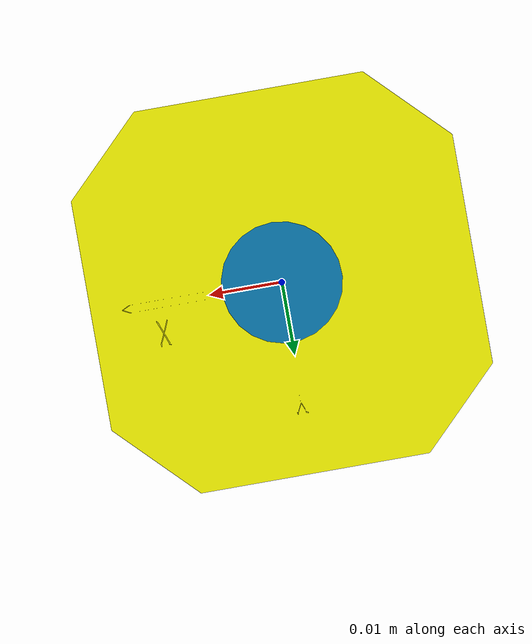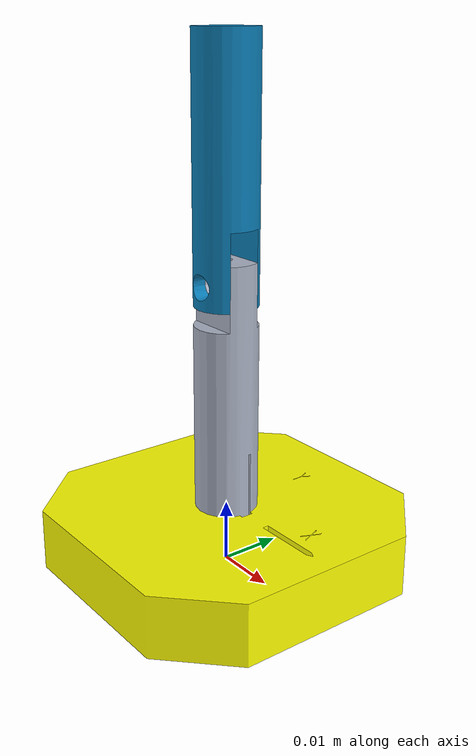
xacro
<?xml version="1.0"?>
<!-- Revolute-Revolute Manipulator -->
<robot name="rrbot" xmlns:xacro="http://www.ros.org/wiki/xacro">

      <link name="world"/>
      <joint name="fixed" type="fixed">
        <parent link="world"/>
        <child link="base_link"/>
      </joint>

      <link
        name="base_link">
        <inertial>
          <origin
            xyz="-1.8503E-05 -3.9839E-06 0.0049956"
            rpy="0 0 0" />
          <mass
            value="0.022169" />
          <inertia
            ixx="4.4372E-06"
            ixy="1.3719E-10"
            ixz="1.4194E-09"
            iyy="4.432E-06"
            iyz="1.3021E-10"
            izz="8.5002E-06" />
        </inertial>
        <visual>
          <origin
            xyz="0 0 0"
            rpy="0 0 0" />
          <geometry>
            <mesh
              filename="package://mylink_urdf/meshes/base_link.STL" />
          </geometry>
          <material
            name="">
            <color
              rgba="1 1 0 1" />
          </material>
        </visual>
        <collision>
          <origin
            xyz="0 0 0"
            rpy="0 0 0" />
          <geometry>
            <mesh
              filename="package://mylink_urdf/meshes/base_link.STL" />
          </geometry>
        </collision>
      </link>
      <link
        name="link_1">
        <inertial>
          <origin
            xyz="-2.4999E-05 5.1564E-10 -0.023575"
            rpy="0 0 0" />
          <mass
            value="1" />
          <inertia
            ixx="1.7851E-01"
            ixy="0"
            ixz="0"
            iyy="1.7915E-01"
            iyz="0"
            izz="1.1684E-01" />
        </inertial>
        <visual>
          <origin
            xyz="0 0 0"
            rpy="0 0 0" />
          <geometry>
            <mesh
              filename="package://mylink_urdf/meshes/link_1.STL" />
          </geometry>
          <material
            name="">
            <color
              rgba="0.66667 0.69804 0.76863 1" />
          </material>
        </visual>
        <collision>
          <origin
            xyz="0 0 0"
            rpy="0 0 0" />
          <geometry>
            <mesh
              filename="package://mylink_urdf/meshes/link_1.STL" />
          </geometry>
        </collision>
      </link>
      <joint
        name="joint_1"
        type="revolute">
        <origin
          xyz="0 0 0.0465"
          rpy="0 0 0" />
        <parent
          link="base_link" />
        <child
          link="link_1" />
        <axis
          xyz="0 0 1" />
        <limit
          lower="-3.14"
          upper="3.14"
          effort="2.5"
          velocity="2" />
      </joint>
      <link
        name="link_2">
        <inertial>
          <origin
            xyz="0.020159 -1.0519E-09 3.8421E-09"
            rpy="0 0 0" />
          <mass
            value="1" />
          <inertia
            ixx="8.856E-01"
            ixy="0"
            ixz="0"
            iyy="7.2036E-01"
            iyz="0"
            izz="7.1373E-01" />
        </inertial>
        <visual>
          <origin
            xyz="0 0 0"
            rpy="0 0 0" />
          <geometry>
            <mesh
              filename="package://mylink_urdf/meshes/link_2.STL" />
          </geometry>
          <material
            name="">
            <color
              rgba="0.039216 0.4902 0.7098 1" />
          </material>
        </visual>
        <collision>
          <origin
            xyz="0 0 0"
            rpy="0 0 0" />
          <geometry>
            <mesh
              filename="package://mylink_urdf/meshes/link_2.STL" />
          </geometry>
        </collision>
      </link>
      <joint
        name="joint_2"
        type="revolute">
        <origin
          xyz="0 0 0"
          rpy="1.5708 -1.5708 0" />
        <parent
          link="link_1" />
        <child
          link="link_2" />
        <axis
          xyz="0 0 -1" />
        <limit
          lower="-2.7"
          upper="2.7"
          effort="2.5"
          velocity="2" />
      </joint>

      <transmission name="tran1">
        <type>transmission_interface/SimpleTransmission</type>
        <joint name="joint_1">
          <hardwareInterface>hardware_interface/EffortJointInterface</hardwareInterface>
        </joint>
        <actuator name="motor1">
          <hardwareInterface>hardware_interface/EffortJointInterface</hardwareInterface>
          <mechanicalReduction>1</mechanicalReduction>
        </actuator>
      </transmission>

      <transmission name="tran2">
        <type>transmission_interface/SimpleTransmission</type>
        <joint name="joint_2">
          <hardwareInterface>hardware_interface/EffortJointInterface</hardwareInterface>
        </joint>
        <actuator name="motor2">
          <hardwareInterface>hardware_interface/EffortJointInterface</hardwareInterface>
          <mechanicalReduction>1</mechanicalReduction>
        </actuator>
      </transmission>

      <gazebo reference="link_2">
        <mu1>0.2</mu1>
        <mu2>0.2</mu2>
        <material>Gazebo/Black</material>
      </gazebo>
      <gazebo reference="link_1">
        <mu1>0.2</mu1>
        <mu2>0.2</mu2>
        <material>Gazebo/Orange</material>
      </gazebo>

      <gazebo>
        <plugin name="gazebo_ros_control" filename="libgazebo_ros_control.so">
          <robotNamespace>/mylink</robotNamespace>
          <robotSimType>gazebo_ros_control/DefaultRobotHWSim</robotSimType>
        </plugin>
      </gazebo>

    </robot>
